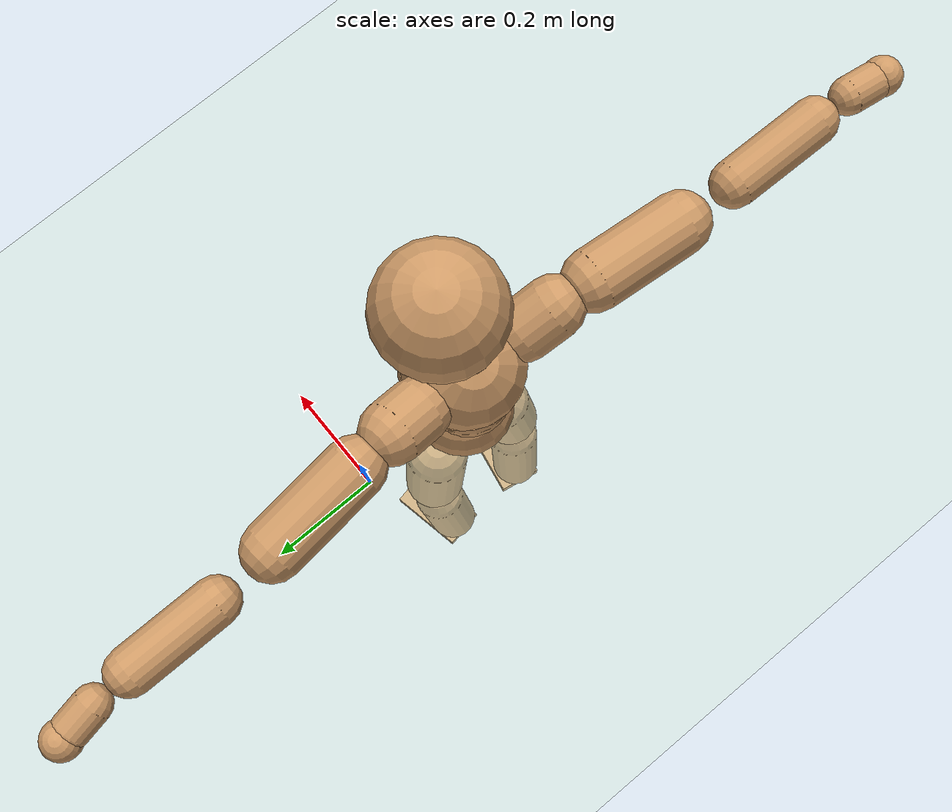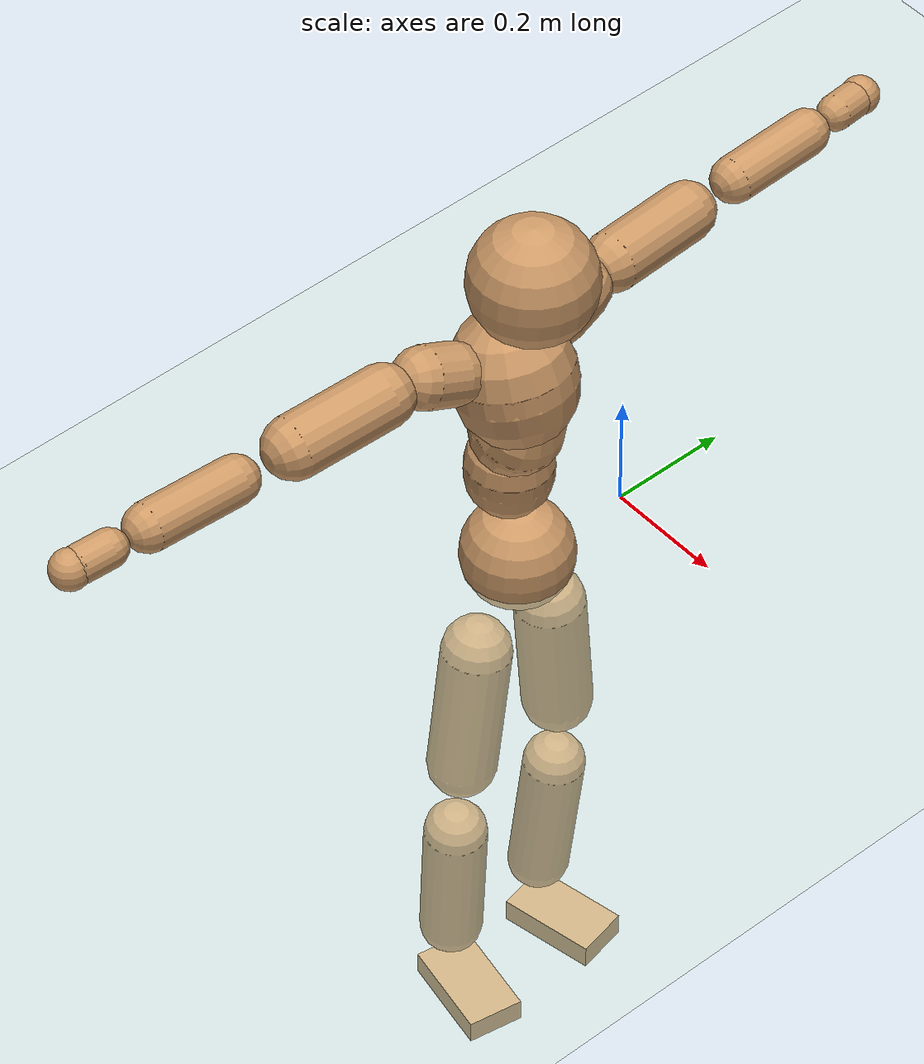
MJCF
<mujoco model="humanoid">
  <compiler coordinate="local" angle="radian"/>
  <default>
    <joint damping="0.0" armature="0.01" stiffness="0.0" limited="true"/>
    <geom conaffinity="1" condim="3" contype="7" margin="0.001" rgba="0.8 0.6 .4 1"/>
  </default>
  <asset>
    <texture type="skybox" builtin="gradient" rgb1=".4 .5 .6" rgb2="0 0 0" width="100" height="100"/>
    <texture builtin="flat" height="1278" mark="cross" markrgb="1 1 1" name="texgeom" random="0.01" rgb1="0.8 0.6 0.4" rgb2="0.8 0.6 0.4" type="cube" width="127"/>
    <texture builtin="checker" height="100" name="texplane" rgb1="0 0 0" rgb2="0.8 0.8 0.8" type="2d" width="100"/>
    <material name="MatPlane" reflectance="0.5" shininess="1" specular="1" texrepeat="60 60" texture="texplane"/>
    <material name="geom" texture="texgeom" texuniform="true"/>
  </asset>
  <worldbody>
    <light cutoff="100" diffuse="1 1 1" dir="-0 0 -1.3" directional="true" exponent="1" pos="0 0 1.3" specular=".1 .1 .1"/>
    <geom conaffinity="1" condim="3" name="floor" pos="0 0 0" rgba="0.8 0.9 0.8 1" size="100 100 .2" type="plane" material="MatPlane"/>
    <body name="Pelvis" pos="-0.0007 -0.2105 0.0234">
      <freejoint name="Pelvis"/>
      <geom type="sphere" contype="1" conaffinity="1" density="500" size="0.0915" pos="0.0000 0.0000 0.0000" name="Pelvis"/>
      <body name="L_Hip" pos="-0.0107 0.0699 -0.0922">
        <joint name="L_Hip_x" type="hinge" pos="0 0 0" axis="1 0 0" stiffness="800" damping="80" armature="0.02" range="-180.0000 180.0000"/>
        <joint name="L_Hip_y" type="hinge" pos="0 0 0" axis="0 1 0" stiffness="800" damping="80" armature="0.02" range="-180.0000 180.0000"/>
        <joint name="L_Hip_z" type="hinge" pos="0 0 0" axis="0 0 1" stiffness="800" damping="80" armature="0.02" range="-180.0000 180.0000"/>
        <geom type="capsule" contype="1" conaffinity="1" density="500" fromto="-0.0012 0.0074 -0.0809 -0.0047 0.0296 -0.3235" size="0.0578" name="L_Hip"/>
        <body name="L_Knee" pos="-0.0058 0.037 -0.4043">
          <joint name="L_Knee_x" type="hinge" pos="0 0 0" axis="1 0 0" stiffness="800" damping="80" armature="0.02" range="-180.0000 180.0000"/>
          <joint name="L_Knee_y" type="hinge" pos="0 0 0" axis="0 1 0" stiffness="800" damping="80" armature="0.02" range="-180.0000 180.0000"/>
          <joint name="L_Knee_z" type="hinge" pos="0 0 0" axis="0 0 1" stiffness="800" damping="80" armature="0.02" range="-180.0000 180.0000"/>
          <geom type="capsule" contype="1" conaffinity="1" density="500" fromto="-0.0089 -0.0026 -0.0863 -0.0355 -0.0103 -0.3453" size="0.0515" name="L_Knee"/>
          <body name="L_Ankle" pos="-0.0443 -0.0128 -0.4316">
            <joint name="L_Ankle_x" type="hinge" pos="0 0 0" axis="1 0 0" stiffness="800" damping="80" armature="0.02" range="-180.0000 180.0000"/>
            <joint name="L_Ankle_y" type="hinge" pos="0 0 0" axis="0 1 0" stiffness="800" damping="80" armature="0.02" range="-180.0000 180.0000"/>
            <joint name="L_Ankle_z" type="hinge" pos="0 0 0" axis="0 0 1" stiffness="800" damping="80" armature="0.02" range="-180.0000 180.0000"/>
            <geom type="box" contype="1" conaffinity="1" density="500" pos="0.0600 0.0119 -0.0304" size="0.0833 0.0455 0.022" quat="0.9952 0.0000 0.0000 0.0974" name="L_Ankle"/>
            <body name="L_Toe" pos="0.1201 0.0237 -0.0609">
              <joint name="L_Toe_x" type="hinge" pos="0 0 0" axis="1 0 0" stiffness="500" damping="50" armature="0.02" range="-180.0000 180.0000"/>
              <joint name="L_Toe_y" type="hinge" pos="0 0 0" axis="0 1 0" stiffness="500" damping="50" armature="0.02" range="-180.0000 180.0000"/>
              <joint name="L_Toe_z" type="hinge" pos="0 0 0" axis="0 0 1" stiffness="500" damping="50" armature="0.02" range="-180.0000 180.0000"/>
              <geom type="box" contype="1" conaffinity="1" density="500" pos="0.0000 0.0000 0.0298" size="0.001 0.0023 0.0011" quat="0.9946 0.0000 0.0000 0.1037" name="L_Toe"/>
            </body>
          </body>
        </body>
      </body>
      <body name="R_Hip" pos="-0.0059 -0.0674 -0.0916">
        <joint name="R_Hip_x" type="hinge" pos="0 0 0" axis="1 0 0" stiffness="800" damping="80" armature="0.02" range="-180.0000 180.0000"/>
        <joint name="R_Hip_y" type="hinge" pos="0 0 0" axis="0 1 0" stiffness="800" damping="80" armature="0.02" range="-180.0000 180.0000"/>
        <joint name="R_Hip_z" type="hinge" pos="0 0 0" axis="0 0 1" stiffness="800" damping="80" armature="0.02" range="-180.0000 180.0000"/>
        <geom type="capsule" contype="1" conaffinity="1" density="500" fromto="-0.0016 -0.0089 -0.0823 -0.0065 -0.0355 -0.3294" size="0.0569" name="R_Hip"/>
        <body name="R_Knee" pos="-0.0081 -0.0443 -0.4117">
          <joint name="R_Knee_x" type="hinge" pos="0 0 0" axis="1 0 0" stiffness="800" damping="80" armature="0.02" range="-180.0000 180.0000"/>
          <joint name="R_Knee_y" type="hinge" pos="0 0 0" axis="0 1 0" stiffness="800" damping="80" armature="0.02" range="-180.0000 180.0000"/>
          <joint name="R_Knee_z" type="hinge" pos="0 0 0" axis="0 0 1" stiffness="800" damping="80" armature="0.02" range="-180.0000 180.0000"/>
          <geom type="capsule" contype="1" conaffinity="1" density="500" fromto="-0.0083 0.0034 -0.0865 -0.0332 0.0134 -0.3461" size="0.0519" name="R_Knee"/>
          <body name="R_Ankle" pos="-0.0415 0.0168 -0.4326">
            <joint name="R_Ankle_x" type="hinge" pos="0 0 0" axis="1 0 0" stiffness="800" damping="80" armature="0.02" range="-180.0000 180.0000"/>
            <joint name="R_Ankle_y" type="hinge" pos="0 0 0" axis="0 1 0" stiffness="800" damping="80" armature="0.02" range="-180.0000 180.0000"/>
            <joint name="R_Ankle_z" type="hinge" pos="0 0 0" axis="0 0 1" stiffness="800" damping="80" armature="0.02" range="-180.0000 180.0000"/>
            <geom type="box" contype="1" conaffinity="1" density="500" pos="0.0621 -0.0112 -0.0258" size="0.0862 0.0476 0.0213" quat="0.9960 0.0000 0.0000 -0.0888" name="R_Ankle"/>
            <body name="R_Toe" pos="0.1241 -0.0223 -0.0516">
              <joint name="R_Toe_x" type="hinge" pos="0 0 0" axis="1 0 0" stiffness="500" damping="50" armature="0.02" range="-180.0000 180.0000"/>
              <joint name="R_Toe_y" type="hinge" pos="0 0 0" axis="0 1 0" stiffness="500" damping="50" armature="0.02" range="-180.0000 180.0000"/>
              <joint name="R_Toe_z" type="hinge" pos="0 0 0" axis="0 0 1" stiffness="500" damping="50" armature="0.02" range="-180.0000 180.0000"/>
              <geom type="box" contype="1" conaffinity="1" density="500" pos="0.0000 0.0000 0.0283" size="0.0009 0.0023 0.0012" quat="0.9968 0.0000 0.0000 -0.0798" name="R_Toe"/>
            </body>
          </body>
        </body>
      </body>
      <body name="Torso" pos="-0.0198 -0.0027 0.1055">
        <joint name="Torso_x" type="hinge" pos="0 0 0" axis="1 0 0" stiffness="1000" damping="100" armature="0.02" range="-180.0000 180.0000"/>
        <joint name="Torso_y" type="hinge" pos="0 0 0" axis="0 1 0" stiffness="1000" damping="100" armature="0.02" range="-180.0000 180.0000"/>
        <joint name="Torso_z" type="hinge" pos="0 0 0" axis="0 0 1" stiffness="1000" damping="100" armature="0.02" range="-180.0000 180.0000"/>
        <geom type="capsule" contype="1" conaffinity="1" density="500" fromto="0.0006 0.0024 0.0771 0.0004 0.0016 0.0514" size="0.0703" name="Torso"/>
        <body name="Spine" pos="0.001 0.004 0.1286">
          <joint name="Spine_x" type="hinge" pos="0 0 0" axis="1 0 0" stiffness="1000" damping="100" armature="0.02" range="-180.0000 180.0000"/>
          <joint name="Spine_y" type="hinge" pos="0 0 0" axis="0 1 0" stiffness="1000" damping="100" armature="0.02" range="-180.0000 180.0000"/>
          <joint name="Spine_z" type="hinge" pos="0 0 0" axis="0 0 1" stiffness="1000" damping="100" armature="0.02" range="-180.0000 180.0000"/>
          <geom type="capsule" contype="1" conaffinity="1" density="500" fromto="0.0158 0.0010 0.0310 0.0105 0.0007 0.0207" size="0.0728" name="Spine"/>
          <body name="Chest" pos="0.0264 0.0016 0.0517">
            <joint name="Chest_x" type="hinge" pos="0 0 0" axis="1 0 0" stiffness="1000" damping="100" armature="0.02" range="-180.0000 180.0000"/>
            <joint name="Chest_y" type="hinge" pos="0 0 0" axis="0 1 0" stiffness="1000" damping="100" armature="0.02" range="-180.0000 180.0000"/>
            <joint name="Chest_z" type="hinge" pos="0 0 0" axis="0 0 1" stiffness="1000" damping="100" armature="0.02" range="-180.0000 180.0000"/>
            <geom type="capsule" contype="1" conaffinity="1" density="500" fromto="-0.0248 -0.0012 0.0922 -0.0165 -0.0008 0.0615" size="0.0976" name="Chest"/>
            <body name="Neck" pos="-0.043 -0.0037 0.2212">
              <joint name="Neck_x" type="hinge" pos="0 0 0" axis="1 0 0" stiffness="500" damping="50" armature="0.02" range="-180.0000 180.0000"/>
              <joint name="Neck_y" type="hinge" pos="0 0 0" axis="0 1 0" stiffness="500" damping="50" armature="0.02" range="-180.0000 180.0000"/>
              <joint name="Neck_z" type="hinge" pos="0 0 0" axis="0 0 1" stiffness="500" damping="50" armature="0.02" range="-180.0000 180.0000"/>
              <geom type="capsule" contype="1" conaffinity="1" density="500" fromto="0.0120 0.0010 0.0149 0.0480 0.0041 0.0598" size="0.0424" name="Neck"/>
              <body name="Head" pos="0.06 0.0052 0.0747">
                <joint name="Head_x" type="hinge" pos="0 0 0" axis="1 0 0" stiffness="500" damping="50" armature="0.02" range="-180.0000 180.0000"/>
                <joint name="Head_y" type="hinge" pos="0 0 0" axis="0 1 0" stiffness="500" damping="50" armature="0.02" range="-180.0000 180.0000"/>
                <joint name="Head_z" type="hinge" pos="0 0 0" axis="0 0 1" stiffness="500" damping="50" armature="0.02" range="-180.0000 180.0000"/>
                <geom type="sphere" contype="1" conaffinity="1" density="500" size="0.1006" pos="0.0000 0.0000 0.0000" name="Head"/>
              </body>
            </body>
            <body name="L_Thorax" pos="-0.0381 0.0784 0.121">
              <joint name="L_Thorax_x" type="hinge" pos="0 0 0" axis="1 0 0" stiffness="500" damping="50" armature="0.02" range="-180.0000 180.0000"/>
              <joint name="L_Thorax_y" type="hinge" pos="0 0 0" axis="0 1 0" stiffness="500" damping="50" armature="0.02" range="-180.0000 180.0000"/>
              <joint name="L_Thorax_z" type="hinge" pos="0 0 0" axis="0 0 1" stiffness="500" damping="50" armature="0.02" range="-180.0000 180.0000"/>
              <geom type="capsule" contype="1" conaffinity="1" density="500" fromto="-0.0016 0.0173 0.0066 -0.0063 0.0691 0.0262" size="0.0505" name="L_Thorax"/>
              <body name="L_Shoulder" pos="-0.0079 0.0864 0.0328">
                <joint name="L_Shoulder_x" type="hinge" pos="0 0 0" axis="1 0 0" stiffness="500" damping="50" armature="0.02" range="-720.0000 720.0000"/>
                <joint name="L_Shoulder_y" type="hinge" pos="0 0 0" axis="0 1 0" stiffness="500" damping="50" armature="0.02" range="-720.0000 720.0000"/>
                <joint name="L_Shoulder_z" type="hinge" pos="0 0 0" axis="0 0 1" stiffness="500" damping="50" armature="0.02" range="-720.0000 720.0000"/>
                <geom type="capsule" contype="1" conaffinity="1" density="500" fromto="-0.0054 0.0545 -0.0030 -0.0218 0.2180 -0.0121" size="0.048" name="L_Shoulder"/>
                <body name="L_Elbow" pos="-0.0272 0.2725 -0.0151">
                  <joint name="L_Elbow_x" type="hinge" pos="0 0 0" axis="1 0 0" stiffness="500" damping="50" armature="0.02" range="-720.0000 720.0000"/>
                  <joint name="L_Elbow_y" type="hinge" pos="0 0 0" axis="0 1 0" stiffness="500" damping="50" armature="0.02" range="-720.0000 720.0000"/>
                  <joint name="L_Elbow_z" type="hinge" pos="0 0 0" axis="0 0 1" stiffness="500" damping="50" armature="0.02" range="-720.0000 720.0000"/>
                  <geom type="capsule" contype="1" conaffinity="1" density="500" fromto="-0.0004 0.0499 0.0022 -0.0015 0.1994 0.0087" size="0.0378" name="L_Elbow"/>
                  <body name="L_Wrist" pos="-0.0019 0.2493 0.0108">
                    <joint name="L_Wrist_x" type="hinge" pos="0 0 0" axis="1 0 0" stiffness="300" damping="30" armature="0.02" range="-180.0000 180.0000"/>
                    <joint name="L_Wrist_y" type="hinge" pos="0 0 0" axis="0 1 0" stiffness="300" damping="30" armature="0.02" range="-180.0000 180.0000"/>
                    <joint name="L_Wrist_z" type="hinge" pos="0 0 0" axis="0 0 1" stiffness="300" damping="30" armature="0.02" range="-180.0000 180.0000"/>
                    <geom type="capsule" contype="1" conaffinity="1" density="500" fromto="-0.0026 0.0157 -0.0019 -0.0105 0.0627 -0.0077" size="0.0295" name="L_Wrist"/>
                    <body name="L_Hand" pos="-0.0131 0.0784 -0.0096">
                      <joint name="L_Hand_x" type="hinge" pos="0 0 0" axis="1 0 0" stiffness="300" damping="30" armature="0.02" range="-180.0000 180.0000"/>
                      <joint name="L_Hand_y" type="hinge" pos="0 0 0" axis="0 1 0" stiffness="300" damping="30" armature="0.02" range="-180.0000 180.0000"/>
                      <joint name="L_Hand_z" type="hinge" pos="0 0 0" axis="0 0 1" stiffness="300" damping="30" armature="0.02" range="-180.0000 180.0000"/>
                      <geom type="sphere" contype="1" conaffinity="1" density="500" size="0.0315" pos="0.0000 0.0000 0.0000" name="L_Hand"/>
                    </body>
                  </body>
                </body>
              </body>
            </body>
            <body name="R_Thorax" pos="-0.0427 -0.0808 0.1188">
              <joint name="R_Thorax_x" type="hinge" pos="0 0 0" axis="1 0 0" stiffness="500" damping="50" armature="0.02" range="-180.0000 180.0000"/>
              <joint name="R_Thorax_y" type="hinge" pos="0 0 0" axis="0 1 0" stiffness="500" damping="50" armature="0.02" range="-180.0000 180.0000"/>
              <joint name="R_Thorax_z" type="hinge" pos="0 0 0" axis="0 0 1" stiffness="500" damping="50" armature="0.02" range="-180.0000 180.0000"/>
              <geom type="capsule" contype="1" conaffinity="1" density="500" fromto="-0.0020 -0.0177 0.0071 -0.0080 -0.0708 0.0286" size="0.0494" name="R_Thorax"/>
              <body name="R_Shoulder" pos="-0.01 -0.0885 0.0357">
                <joint name="R_Shoulder_x" type="hinge" pos="0 0 0" axis="1 0 0" stiffness="500" damping="50" armature="0.02" range="-720.0000 720.0000"/>
                <joint name="R_Shoulder_y" type="hinge" pos="0 0 0" axis="0 1 0" stiffness="500" damping="50" armature="0.02" range="-720.0000 720.0000"/>
                <joint name="R_Shoulder_z" type="hinge" pos="0 0 0" axis="0 0 1" stiffness="500" damping="50" armature="0.02" range="-720.0000 720.0000"/>
                <geom type="capsule" contype="1" conaffinity="1" density="500" fromto="-0.0042 -0.0526 -0.0035 -0.0170 -0.2104 -0.0140" size="0.0502" name="R_Shoulder"/>
                <body name="R_Elbow" pos="-0.0212 -0.2631 -0.0175">
                  <joint name="R_Elbow_x" type="hinge" pos="0 0 0" axis="1 0 0" stiffness="500" damping="50" armature="0.02" range="-720.0000 720.0000"/>
                  <joint name="R_Elbow_y" type="hinge" pos="0 0 0" axis="0 1 0" stiffness="500" damping="50" armature="0.02" range="-720.0000 720.0000"/>
                  <joint name="R_Elbow_z" type="hinge" pos="0 0 0" axis="0 0 1" stiffness="500" damping="50" armature="0.02" range="-720.0000 720.0000"/>
                  <geom type="capsule" contype="1" conaffinity="1" density="500" fromto="-0.0012 -0.0519 0.0019 -0.0049 -0.2075 0.0078" size="0.0386" name="R_Elbow"/>
                  <body name="R_Wrist" pos="-0.0061 -0.2594 0.0097">
                    <joint name="R_Wrist_x" type="hinge" pos="0 0 0" axis="1 0 0" stiffness="300" damping="30" armature="0.02" range="-180.0000 180.0000"/>
                    <joint name="R_Wrist_y" type="hinge" pos="0 0 0" axis="0 1 0" stiffness="300" damping="30" armature="0.02" range="-180.0000 180.0000"/>
                    <joint name="R_Wrist_z" type="hinge" pos="0 0 0" axis="0 0 1" stiffness="300" damping="30" armature="0.02" range="-180.0000 180.0000"/>
                    <geom type="capsule" contype="1" conaffinity="1" density="500" fromto="-0.0020 -0.0160 -0.0015 -0.0081 -0.0639 -0.0058" size="0.0305" name="R_Wrist"/>
                    <body name="R_Hand" pos="-0.0102 -0.0798 -0.0073">
                      <joint name="R_Hand_x" type="hinge" pos="0 0 0" axis="1 0 0" stiffness="300" damping="30" armature="0.02" range="-180.0000 180.0000"/>
                      <joint name="R_Hand_y" type="hinge" pos="0 0 0" axis="0 1 0" stiffness="300" damping="30" armature="0.02" range="-180.0000 180.0000"/>
                      <joint name="R_Hand_z" type="hinge" pos="0 0 0" axis="0 0 1" stiffness="300" damping="30" armature="0.02" range="-180.0000 180.0000"/>
                      <geom type="sphere" contype="1" conaffinity="1" density="500" size="0.0320" pos="0.0000 0.0000 0.0000" name="R_Hand"/>
                    </body>
                  </body>
                </body>
              </body>
            </body>
          </body>
        </body>
      </body>
    </body>
  </worldbody>
  <actuator>
    <motor name="L_Hip_x" joint="L_Hip_x" gear="500"/>
    <motor name="L_Hip_y" joint="L_Hip_y" gear="500"/>
    <motor name="L_Hip_z" joint="L_Hip_z" gear="500"/>
    <motor name="L_Knee_x" joint="L_Knee_x" gear="500"/>
    <motor name="L_Knee_y" joint="L_Knee_y" gear="500"/>
    <motor name="L_Knee_z" joint="L_Knee_z" gear="500"/>
    <motor name="L_Ankle_x" joint="L_Ankle_x" gear="500"/>
    <motor name="L_Ankle_y" joint="L_Ankle_y" gear="500"/>
    <motor name="L_Ankle_z" joint="L_Ankle_z" gear="500"/>
    <motor name="L_Toe_x" joint="L_Toe_x" gear="500"/>
    <motor name="L_Toe_y" joint="L_Toe_y" gear="500"/>
    <motor name="L_Toe_z" joint="L_Toe_z" gear="500"/>
    <motor name="R_Hip_x" joint="R_Hip_x" gear="500"/>
    <motor name="R_Hip_y" joint="R_Hip_y" gear="500"/>
    <motor name="R_Hip_z" joint="R_Hip_z" gear="500"/>
    <motor name="R_Knee_x" joint="R_Knee_x" gear="500"/>
    <motor name="R_Knee_y" joint="R_Knee_y" gear="500"/>
    <motor name="R_Knee_z" joint="R_Knee_z" gear="500"/>
    <motor name="R_Ankle_x" joint="R_Ankle_x" gear="500"/>
    <motor name="R_Ankle_y" joint="R_Ankle_y" gear="500"/>
    <motor name="R_Ankle_z" joint="R_Ankle_z" gear="500"/>
    <motor name="R_Toe_x" joint="R_Toe_x" gear="500"/>
    <motor name="R_Toe_y" joint="R_Toe_y" gear="500"/>
    <motor name="R_Toe_z" joint="R_Toe_z" gear="500"/>
    <motor name="Torso_x" joint="Torso_x" gear="500"/>
    <motor name="Torso_y" joint="Torso_y" gear="500"/>
    <motor name="Torso_z" joint="Torso_z" gear="500"/>
    <motor name="Spine_x" joint="Spine_x" gear="500"/>
    <motor name="Spine_y" joint="Spine_y" gear="500"/>
    <motor name="Spine_z" joint="Spine_z" gear="500"/>
    <motor name="Chest_x" joint="Chest_x" gear="500"/>
    <motor name="Chest_y" joint="Chest_y" gear="500"/>
    <motor name="Chest_z" joint="Chest_z" gear="500"/>
    <motor name="Neck_x" joint="Neck_x" gear="500"/>
    <motor name="Neck_y" joint="Neck_y" gear="500"/>
    <motor name="Neck_z" joint="Neck_z" gear="500"/>
    <motor name="Head_x" joint="Head_x" gear="500"/>
    <motor name="Head_y" joint="Head_y" gear="500"/>
    <motor name="Head_z" joint="Head_z" gear="500"/>
    <motor name="L_Thorax_x" joint="L_Thorax_x" gear="500"/>
    <motor name="L_Thorax_y" joint="L_Thorax_y" gear="500"/>
    <motor name="L_Thorax_z" joint="L_Thorax_z" gear="500"/>
    <motor name="L_Shoulder_x" joint="L_Shoulder_x" gear="500"/>
    <motor name="L_Shoulder_y" joint="L_Shoulder_y" gear="500"/>
    <motor name="L_Shoulder_z" joint="L_Shoulder_z" gear="500"/>
    <motor name="L_Elbow_x" joint="L_Elbow_x" gear="500"/>
    <motor name="L_Elbow_y" joint="L_Elbow_y" gear="500"/>
    <motor name="L_Elbow_z" joint="L_Elbow_z" gear="500"/>
    <motor name="L_Wrist_x" joint="L_Wrist_x" gear="500"/>
    <motor name="L_Wrist_y" joint="L_Wrist_y" gear="500"/>
    <motor name="L_Wrist_z" joint="L_Wrist_z" gear="500"/>
    <motor name="L_Hand_x" joint="L_Hand_x" gear="500"/>
    <motor name="L_Hand_y" joint="L_Hand_y" gear="500"/>
    <motor name="L_Hand_z" joint="L_Hand_z" gear="500"/>
    <motor name="R_Thorax_x" joint="R_Thorax_x" gear="500"/>
    <motor name="R_Thorax_y" joint="R_Thorax_y" gear="500"/>
    <motor name="R_Thorax_z" joint="R_Thorax_z" gear="500"/>
    <motor name="R_Shoulder_x" joint="R_Shoulder_x" gear="500"/>
    <motor name="R_Shoulder_y" joint="R_Shoulder_y" gear="500"/>
    <motor name="R_Shoulder_z" joint="R_Shoulder_z" gear="500"/>
    <motor name="R_Elbow_x" joint="R_Elbow_x" gear="500"/>
    <motor name="R_Elbow_y" joint="R_Elbow_y" gear="500"/>
    <motor name="R_Elbow_z" joint="R_Elbow_z" gear="500"/>
    <motor name="R_Wrist_x" joint="R_Wrist_x" gear="500"/>
    <motor name="R_Wrist_y" joint="R_Wrist_y" gear="500"/>
    <motor name="R_Wrist_z" joint="R_Wrist_z" gear="500"/>
    <motor name="R_Hand_x" joint="R_Hand_x" gear="500"/>
    <motor name="R_Hand_y" joint="R_Hand_y" gear="500"/>
    <motor name="R_Hand_z" joint="R_Hand_z" gear="500"/>
  </actuator>
  <contact>
    <exclude body1="Torso" body2="Chest"/>
    <exclude body1="Head" body2="Chest"/>
    <exclude body1="R_Knee" body2="R_Toe"/>
    <exclude body1="R_Knee" body2="L_Ankle"/>
    <exclude body1="R_Knee" body2="L_Toe"/>
    <exclude body1="L_Knee" body2="L_Toe"/>
    <exclude body1="L_Knee" body2="R_Ankle"/>
    <exclude body1="L_Knee" body2="R_Toe"/>
    <exclude body1="L_Shoulder" body2="Chest"/>
    <exclude body1="R_Shoulder" body2="Chest"/>
  </contact>
  <sensor/>
  <size njmax="700" nconmax="700"/>
</mujoco>
